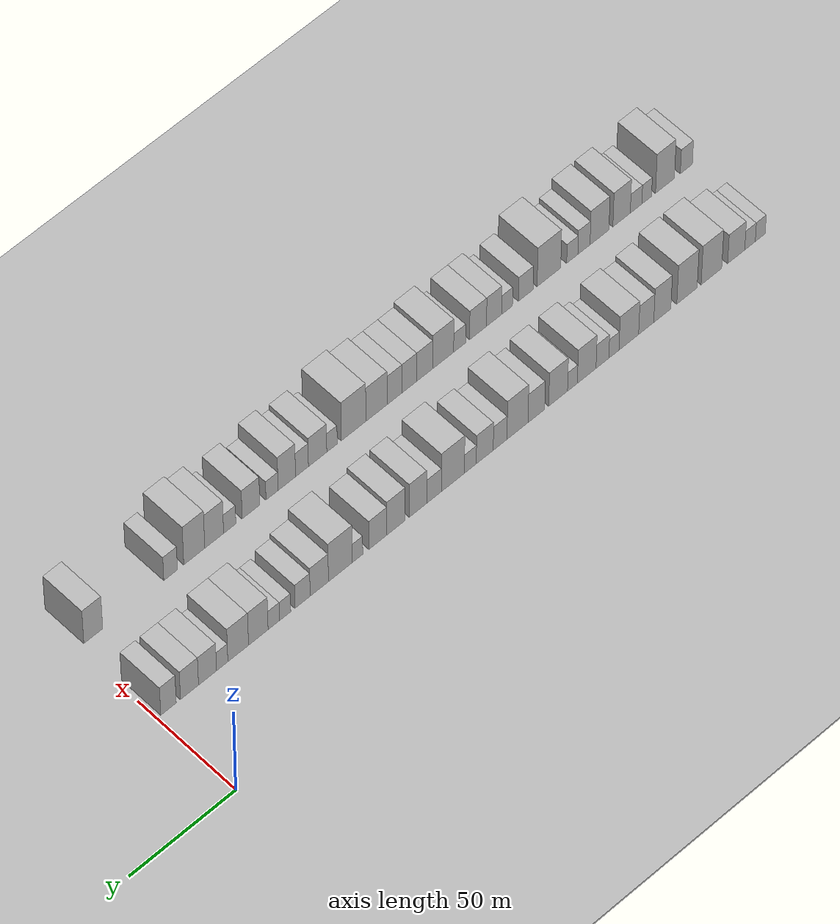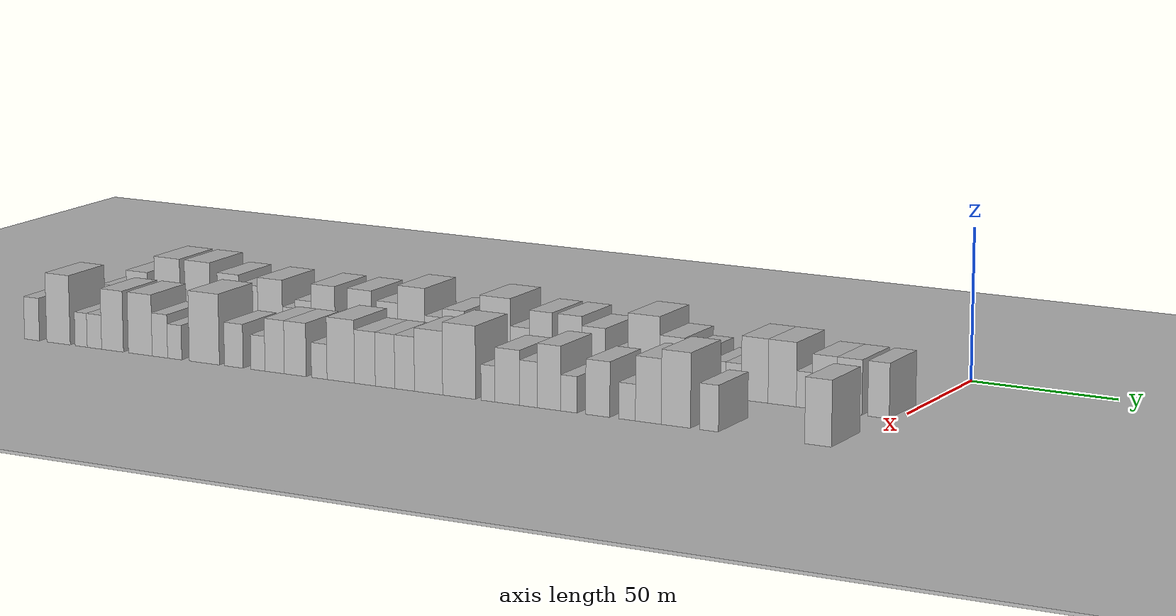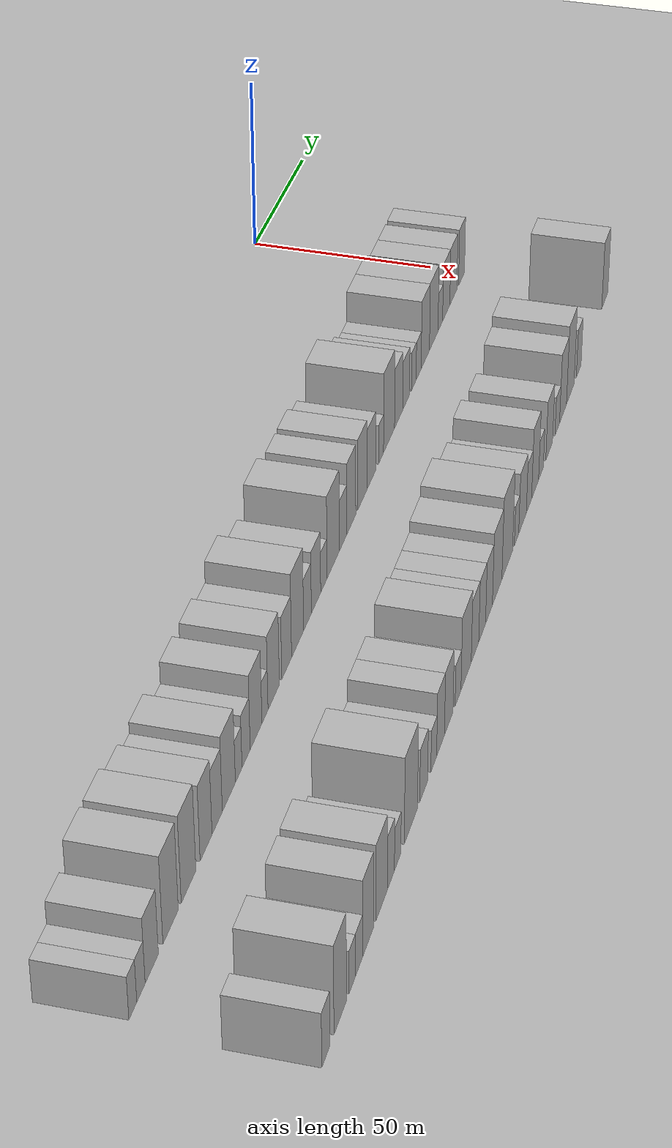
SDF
<sdf version="1.6">
 <world name="default">
  <include><name>ground_plane_1</name><uri>model://HANNAS_ground_plane</uri></include>
  <include>
   <name>ground_plane_2</name>
   <uri>model://HANNAS_ground_plane</uri>
   <pose>100 0 0  0 0 0</pose>
  </include>
  <model name="building_1">
   <static>1</static>
   <pose>50.0000 -294.4814 0 0.000000 0.000000 0.000000</pose>
   <link name="link">
    <pose>0 0 6.00 0 0 0</pose>
    <collision name="collision"><geometry><box><size>20.0000 5.0373 12.0000</size></box></geometry></collision>
    <visual name="visual">
     <cast_shadows>0</cast_shadows>
     <geometry><box><size>20.0000 5.0373 12.0000</size></box></geometry>
     <material>
      <script>
       <uri>model://HANNAS_wall/materials/scripts</uri>
       <uri>model://HANNAS_wall/materials/textures</uri>
       <name>vrc/HANNAS_wall</name>
      </script>
     </material>
    </visual>
   </link>
  </model>
  <model name="building_2">
   <static>1</static>
   <pose>50.0000 -289.2743 0 0.000000 0.000000 0.000000</pose>
   <link name="link">
    <pose>0 0 6.00 0 0 0</pose>
    <collision name="collision"><geometry><box><size>20.0000 5.3769 12.0000</size></box></geometry></collision>
    <visual name="visual">
     <cast_shadows>0</cast_shadows>
     <geometry><box><size>20.0000 5.3769 12.0000</size></box></geometry>
     <material>
      <script>
       <uri>model://HANNAS_wall/materials/scripts</uri>
       <uri>model://HANNAS_wall/materials/textures</uri>
       <name>vrc/HANNAS_wall</name>
      </script>
     </material>
    </visual>
   </link>
  </model>
  <model name="building_3">
   <static>1</static>
   <pose>50.0000 -282.2469 0 0.000000 0.000000 0.000000</pose>
   <link name="link">
    <pose>0 0 9.00 0 0 0</pose>
    <collision name="collision"><geometry><box><size>20.0000 8.6779 18.0000</size></box></geometry></collision>
    <visual name="visual">
     <cast_shadows>0</cast_shadows>
     <geometry><box><size>20.0000 8.6779 18.0000</size></box></geometry>
     <material>
      <script>
       <uri>model://HANNAS_wall/materials/scripts</uri>
       <uri>model://HANNAS_wall/materials/textures</uri>
       <name>vrc/HANNAS_wall</name>
      </script>
     </material>
    </visual>
   </link>
  </model>
  <model name="building_4">
   <static>1</static>
   <pose>50.0000 -269.6992 0 0.000000 0.000000 0.000000</pose>
   <link name="link">
    <pose>0 0 12.00 0 0 0</pose>
    <collision name="collision"><geometry><box><size>20.0000 10.4175 24.0000</size></box></geometry></collision>
    <visual name="visual">
     <cast_shadows>0</cast_shadows>
     <geometry><box><size>20.0000 10.4175 24.0000</size></box></geometry>
     <material>
      <script>
       <uri>model://HANNAS_wall/materials/scripts</uri>
       <uri>model://HANNAS_wall/materials/textures</uri>
       <name>vrc/HANNAS_wall</name>
      </script>
     </material>
    </visual>
   </link>
  </model>
  <model name="building_5">
   <static>1</static>
   <pose>50.0000 -257.3596 0 0.000000 0.000000 0.000000</pose>
   <link name="link">
    <pose>0 0 12.00 0 0 0</pose>
    <collision name="collision"><geometry><box><size>20.0000 10.2619 24.0000</size></box></geometry></collision>
    <visual name="visual">
     <cast_shadows>0</cast_shadows>
     <geometry><box><size>20.0000 10.2619 24.0000</size></box></geometry>
     <material>
      <script>
       <uri>model://HANNAS_wall/materials/scripts</uri>
       <uri>model://HANNAS_wall/materials/textures</uri>
       <name>vrc/HANNAS_wall</name>
      </script>
     </material>
    </visual>
   </link>
  </model>
  <model name="building_6">
   <static>1</static>
   <pose>50.0000 -244.9306 0 0.000000 0.000000 0.000000</pose>
   <link name="link">
    <pose>0 0 10.50 0 0 0</pose>
    <collision name="collision"><geometry><box><size>20.0000 8.5960 21.0000</size></box></geometry></collision>
    <visual name="visual">
     <cast_shadows>0</cast_shadows>
     <geometry><box><size>20.0000 8.5960 21.0000</size></box></geometry>
     <material>
      <script>
       <uri>model://HANNAS_wall/materials/scripts</uri>
       <uri>model://HANNAS_wall/materials/textures</uri>
       <name>vrc/HANNAS_wall</name>
      </script>
     </material>
    </visual>
   </link>
  </model>
  <model name="building_7">
   <static>1</static>
   <pose>50.0000 -236.8442 0 0.000000 0.000000 0.000000</pose>
   <link name="link">
    <pose>0 0 9.00 0 0 0</pose>
    <collision name="collision"><geometry><box><size>20.0000 7.5769 18.0000</size></box></geometry></collision>
    <visual name="visual">
     <cast_shadows>0</cast_shadows>
     <geometry><box><size>20.0000 7.5769 18.0000</size></box></geometry>
     <material>
      <script>
       <uri>model://HANNAS_wall/materials/scripts</uri>
       <uri>model://HANNAS_wall/materials/textures</uri>
       <name>vrc/HANNAS_wall</name>
      </script>
     </material>
    </visual>
   </link>
  </model>
  <model name="building_8">
   <static>1</static>
   <pose>50.0000 -228.1408 0 0.000000 0.000000 0.000000</pose>
   <link name="link">
    <pose>0 0 10.50 0 0 0</pose>
    <collision name="collision"><geometry><box><size>20.0000 9.8300 21.0000</size></box></geometry></collision>
    <visual name="visual">
     <cast_shadows>0</cast_shadows>
     <geometry><box><size>20.0000 9.8300 21.0000</size></box></geometry>
     <material>
      <script>
       <uri>model://HANNAS_wall/materials/scripts</uri>
       <uri>model://HANNAS_wall/materials/textures</uri>
       <name>vrc/HANNAS_wall</name>
      </script>
     </material>
    </visual>
   </link>
  </model>
  <model name="building_9">
   <static>1</static>
   <pose>50.0000 -220.6946 0 0.000000 0.000000 0.000000</pose>
   <link name="link">
    <pose>0 0 6.00 0 0 0</pose>
    <collision name="collision"><geometry><box><size>20.0000 5.0625 12.0000</size></box></geometry></collision>
    <visual name="visual">
     <cast_shadows>0</cast_shadows>
     <geometry><box><size>20.0000 5.0625 12.0000</size></box></geometry>
     <material>
      <script>
       <uri>model://HANNAS_wall/materials/scripts</uri>
       <uri>model://HANNAS_wall/materials/textures</uri>
       <name>vrc/HANNAS_wall</name>
      </script>
     </material>
    </visual>
   </link>
  </model>
  <model name="building_10">
   <static>1</static>
   <pose>50.0000 -214.9720 0 0.000000 0.000000 0.000000</pose>
   <link name="link">
    <pose>0 0 7.50 0 0 0</pose>
    <collision name="collision"><geometry><box><size>20.0000 6.3826 15.0000</size></box></geometry></collision>
    <visual name="visual">
     <cast_shadows>0</cast_shadows>
     <geometry><box><size>20.0000 6.3826 15.0000</size></box></geometry>
     <material>
      <script>
       <uri>model://HANNAS_wall/materials/scripts</uri>
       <uri>model://HANNAS_wall/materials/textures</uri>
       <name>vrc/HANNAS_wall</name>
      </script>
     </material>
    </visual>
   </link>
  </model>
  <model name="building_11">
   <static>1</static>
   <pose>50.0000 -207.1445 0 0.000000 0.000000 0.000000</pose>
   <link name="link">
    <pose>0 0 10.50 0 0 0</pose>
    <collision name="collision"><geometry><box><size>20.0000 9.2723 21.0000</size></box></geometry></collision>
    <visual name="visual">
     <cast_shadows>0</cast_shadows>
     <geometry><box><size>20.0000 9.2723 21.0000</size></box></geometry>
     <material>
      <script>
       <uri>model://HANNAS_wall/materials/scripts</uri>
       <uri>model://HANNAS_wall/materials/textures</uri>
       <name>vrc/HANNAS_wall</name>
      </script>
     </material>
    </visual>
   </link>
  </model>
  <model name="building_12">
   <static>1</static>
   <pose>50.0000 -200.0656 0 0.000000 0.000000 0.000000</pose>
   <link name="link">
    <pose>0 0 6.00 0 0 0</pose>
    <collision name="collision"><geometry><box><size>20.0000 4.8856 12.0000</size></box></geometry></collision>
    <visual name="visual">
     <cast_shadows>0</cast_shadows>
     <geometry><box><size>20.0000 4.8856 12.0000</size></box></geometry>
     <material>
      <script>
       <uri>model://HANNAS_wall/materials/scripts</uri>
       <uri>model://HANNAS_wall/materials/textures</uri>
       <name>vrc/HANNAS_wall</name>
      </script>
     </material>
    </visual>
   </link>
  </model>
  <model name="building_13">
   <static>1</static>
   <pose>50.0000 -192.9678 0 0.000000 0.000000 0.000000</pose>
   <link name="link">
    <pose>0 0 10.50 0 0 0</pose>
    <collision name="collision"><geometry><box><size>20.0000 9.3100 21.0000</size></box></geometry></collision>
    <visual name="visual">
     <cast_shadows>0</cast_shadows>
     <geometry><box><size>20.0000 9.3100 21.0000</size></box></geometry>
     <material>
      <script>
       <uri>model://HANNAS_wall/materials/scripts</uri>
       <uri>model://HANNAS_wall/materials/textures</uri>
       <name>vrc/HANNAS_wall</name>
      </script>
     </material>
    </visual>
   </link>
  </model>
  <model name="building_14">
   <static>1</static>
   <pose>50.0000 -182.2153 0 0.000000 0.000000 0.000000</pose>
   <link name="link">
    <pose>0 0 9.00 0 0 0</pose>
    <collision name="collision"><geometry><box><size>20.0000 8.1949 18.0000</size></box></geometry></collision>
    <visual name="visual">
     <cast_shadows>0</cast_shadows>
     <geometry><box><size>20.0000 8.1949 18.0000</size></box></geometry>
     <material>
      <script>
       <uri>model://HANNAS_wall/materials/scripts</uri>
       <uri>model://HANNAS_wall/materials/textures</uri>
       <name>vrc/HANNAS_wall</name>
      </script>
     </material>
    </visual>
   </link>
  </model>
  <model name="building_15">
   <static>1</static>
   <pose>50.0000 -172.9326 0 0.000000 0.000000 0.000000</pose>
   <link name="link">
    <pose>0 0 12.00 0 0 0</pose>
    <collision name="collision"><geometry><box><size>20.0000 10.3706 24.0000</size></box></geometry></collision>
    <visual name="visual">
     <cast_shadows>0</cast_shadows>
     <geometry><box><size>20.0000 10.3706 24.0000</size></box></geometry>
     <material>
      <script>
       <uri>model://HANNAS_wall/materials/scripts</uri>
       <uri>model://HANNAS_wall/materials/textures</uri>
       <name>vrc/HANNAS_wall</name>
      </script>
     </material>
    </visual>
   </link>
  </model>
  <model name="building_16">
   <static>1</static>
   <pose>50.0000 -164.3762 0 0.000000 0.000000 0.000000</pose>
   <link name="link">
    <pose>0 0 7.50 0 0 0</pose>
    <collision name="collision"><geometry><box><size>20.0000 6.7421 15.0000</size></box></geometry></collision>
    <visual name="visual">
     <cast_shadows>0</cast_shadows>
     <geometry><box><size>20.0000 6.7421 15.0000</size></box></geometry>
     <material>
      <script>
       <uri>model://HANNAS_wall/materials/scripts</uri>
       <uri>model://HANNAS_wall/materials/textures</uri>
       <name>vrc/HANNAS_wall</name>
      </script>
     </material>
    </visual>
   </link>
  </model>
  <model name="building_17">
   <static>1</static>
   <pose>50.0000 -156.8604 0 0.000000 0.000000 0.000000</pose>
   <link name="link">
    <pose>0 0 9.00 0 0 0</pose>
    <collision name="collision"><geometry><box><size>20.0000 8.2895 18.0000</size></box></geometry></collision>
    <visual name="visual">
     <cast_shadows>0</cast_shadows>
     <geometry><box><size>20.0000 8.2895 18.0000</size></box></geometry>
     <material>
      <script>
       <uri>model://HANNAS_wall/materials/scripts</uri>
       <uri>model://HANNAS_wall/materials/textures</uri>
       <name>vrc/HANNAS_wall</name>
      </script>
     </material>
    </visual>
   </link>
  </model>
  <model name="building_18">
   <static>1</static>
   <pose>50.0000 -149.8223 0 0.000000 0.000000 0.000000</pose>
   <link name="link">
    <pose>0 0 6.00 0 0 0</pose>
    <collision name="collision"><geometry><box><size>20.0000 5.7867 12.0000</size></box></geometry></collision>
    <visual name="visual">
     <cast_shadows>0</cast_shadows>
     <geometry><box><size>20.0000 5.7867 12.0000</size></box></geometry>
     <material>
      <script>
       <uri>model://HANNAS_wall/materials/scripts</uri>
       <uri>model://HANNAS_wall/materials/textures</uri>
       <name>vrc/HANNAS_wall</name>
      </script>
     </material>
    </visual>
   </link>
  </model>
  <model name="building_19">
   <static>1</static>
   <pose>50.0000 -141.2741 0 0.000000 0.000000 0.000000</pose>
   <link name="link">
    <pose>0 0 12.00 0 0 0</pose>
    <collision name="collision"><geometry><box><size>20.0000 11.3098 24.0000</size></box></geometry></collision>
    <visual name="visual">
     <cast_shadows>0</cast_shadows>
     <geometry><box><size>20.0000 11.3098 24.0000</size></box></geometry>
     <material>
      <script>
       <uri>model://HANNAS_wall/materials/scripts</uri>
       <uri>model://HANNAS_wall/materials/textures</uri>
       <name>vrc/HANNAS_wall</name>
      </script>
     </material>
    </visual>
   </link>
  </model>
  <model name="building_20">
   <static>1</static>
   <pose>50.0000 -132.0643 0 0.000000 0.000000 0.000000</pose>
   <link name="link">
    <pose>0 0 7.50 0 0 0</pose>
    <collision name="collision"><geometry><box><size>20.0000 7.1097 15.0000</size></box></geometry></collision>
    <visual name="visual">
     <cast_shadows>0</cast_shadows>
     <geometry><box><size>20.0000 7.1097 15.0000</size></box></geometry>
     <material>
      <script>
       <uri>model://HANNAS_wall/materials/scripts</uri>
       <uri>model://HANNAS_wall/materials/textures</uri>
       <name>vrc/HANNAS_wall</name>
      </script>
     </material>
    </visual>
   </link>
  </model>
  <model name="building_21">
   <static>1</static>
   <pose>50.0000 -124.2901 0 0.000000 0.000000 0.000000</pose>
   <link name="link">
    <pose>0 0 10.50 0 0 0</pose>
    <collision name="collision"><geometry><box><size>20.0000 8.4387 21.0000</size></box></geometry></collision>
    <visual name="visual">
     <cast_shadows>0</cast_shadows>
     <geometry><box><size>20.0000 8.4387 21.0000</size></box></geometry>
     <material>
      <script>
       <uri>model://HANNAS_wall/materials/scripts</uri>
       <uri>model://HANNAS_wall/materials/textures</uri>
       <name>vrc/HANNAS_wall</name>
      </script>
     </material>
    </visual>
   </link>
  </model>
  <model name="building_22">
   <static>1</static>
   <pose>50.0000 -113.6414 0 0.000000 0.000000 0.000000</pose>
   <link name="link">
    <pose>0 0 10.50 0 0 0</pose>
    <collision name="collision"><geometry><box><size>20.0000 8.8589 21.0000</size></box></geometry></collision>
    <visual name="visual">
     <cast_shadows>0</cast_shadows>
     <geometry><box><size>20.0000 8.8589 21.0000</size></box></geometry>
     <material>
      <script>
       <uri>model://HANNAS_wall/materials/scripts</uri>
       <uri>model://HANNAS_wall/materials/textures</uri>
       <name>vrc/HANNAS_wall</name>
      </script>
     </material>
    </visual>
   </link>
  </model>
  <model name="building_23">
   <static>1</static>
   <pose>50.0000 -104.8949 0 0.000000 0.000000 0.000000</pose>
   <link name="link">
    <pose>0 0 9.00 0 0 0</pose>
    <collision name="collision"><geometry><box><size>20.0000 8.6341 18.0000</size></box></geometry></collision>
    <visual name="visual">
     <cast_shadows>0</cast_shadows>
     <geometry><box><size>20.0000 8.6341 18.0000</size></box></geometry>
     <material>
      <script>
       <uri>model://HANNAS_wall/materials/scripts</uri>
       <uri>model://HANNAS_wall/materials/textures</uri>
       <name>vrc/HANNAS_wall</name>
      </script>
     </material>
    </visual>
   </link>
  </model>
  <model name="building_24">
   <static>1</static>
   <pose>50.0000 -95.0213 0 0.000000 0.000000 0.000000</pose>
   <link name="link">
    <pose>0 0 6.00 0 0 0</pose>
    <collision name="collision"><geometry><box><size>20.0000 5.1131 12.0000</size></box></geometry></collision>
    <visual name="visual">
     <cast_shadows>0</cast_shadows>
     <geometry><box><size>20.0000 5.1131 12.0000</size></box></geometry>
     <material>
      <script>
       <uri>model://HANNAS_wall/materials/scripts</uri>
       <uri>model://HANNAS_wall/materials/textures</uri>
       <name>vrc/HANNAS_wall</name>
      </script>
     </material>
    </visual>
   </link>
  </model>
  <model name="building_25">
   <static>1</static>
   <pose>50.0000 -86.7722 0 0.000000 0.000000 0.000000</pose>
   <link name="link">
    <pose>0 0 12.00 0 0 0</pose>
    <collision name="collision"><geometry><box><size>20.0000 11.3852 24.0000</size></box></geometry></collision>
    <visual name="visual">
     <cast_shadows>0</cast_shadows>
     <geometry><box><size>20.0000 11.3852 24.0000</size></box></geometry>
     <material>
      <script>
       <uri>model://HANNAS_wall/materials/scripts</uri>
       <uri>model://HANNAS_wall/materials/textures</uri>
       <name>vrc/HANNAS_wall</name>
      </script>
     </material>
    </visual>
   </link>
  </model>
  <model name="building_26">
   <static>1</static>
   <pose>50.0000 -76.6967 0 0.000000 0.000000 0.000000</pose>
   <link name="link">
    <pose>0 0 9.00 0 0 0</pose>
    <collision name="collision"><geometry><box><size>20.0000 8.7659 18.0000</size></box></geometry></collision>
    <visual name="visual">
     <cast_shadows>0</cast_shadows>
     <geometry><box><size>20.0000 8.7659 18.0000</size></box></geometry>
     <material>
      <script>
       <uri>model://HANNAS_wall/materials/scripts</uri>
       <uri>model://HANNAS_wall/materials/textures</uri>
       <name>vrc/HANNAS_wall</name>
      </script>
     </material>
    </visual>
   </link>
  </model>
  <model name="building_27">
   <static>1</static>
   <pose>50.0000 -68.6961 0 0.000000 0.000000 0.000000</pose>
   <link name="link">
    <pose>0 0 7.50 0 0 0</pose>
    <collision name="collision"><geometry><box><size>20.0000 7.2352 15.0000</size></box></geometry></collision>
    <visual name="visual">
     <cast_shadows>0</cast_shadows>
     <geometry><box><size>20.0000 7.2352 15.0000</size></box></geometry>
     <material>
      <script>
       <uri>model://HANNAS_wall/materials/scripts</uri>
       <uri>model://HANNAS_wall/materials/textures</uri>
       <name>vrc/HANNAS_wall</name>
      </script>
     </material>
    </visual>
   </link>
  </model>
  <model name="building_28">
   <static>1</static>
   <pose>50.0000 -60.4429 0 0.000000 0.000000 0.000000</pose>
   <link name="link">
    <pose>0 0 6.00 0 0 0</pose>
    <collision name="collision"><geometry><box><size>20.0000 5.2712 12.0000</size></box></geometry></collision>
    <visual name="visual">
     <cast_shadows>0</cast_shadows>
     <geometry><box><size>20.0000 5.2712 12.0000</size></box></geometry>
     <material>
      <script>
       <uri>model://HANNAS_wall/materials/scripts</uri>
       <uri>model://HANNAS_wall/materials/textures</uri>
       <name>vrc/HANNAS_wall</name>
      </script>
     </material>
    </visual>
   </link>
  </model>
  <model name="building_29">
   <static>1</static>
   <pose>50.0000 -55.0356 0 0.000000 0.000000 0.000000</pose>
   <link name="link">
    <pose>0 0 6.00 0 0 0</pose>
    <collision name="collision"><geometry><box><size>20.0000 5.5434 12.0000</size></box></geometry></collision>
    <visual name="visual">
     <cast_shadows>0</cast_shadows>
     <geometry><box><size>20.0000 5.5434 12.0000</size></box></geometry>
     <material>
      <script>
       <uri>model://HANNAS_wall/materials/scripts</uri>
       <uri>model://HANNAS_wall/materials/textures</uri>
       <name>vrc/HANNAS_wall</name>
      </script>
     </material>
    </visual>
   </link>
  </model>
  <model name="building_30">
   <static>1</static>
   <pose>50.0000 -47.6244 0 0.000000 0.000000 0.000000</pose>
   <link name="link">
    <pose>0 0 10.50 0 0 0</pose>
    <collision name="collision"><geometry><box><size>20.0000 9.2790 21.0000</size></box></geometry></collision>
    <visual name="visual">
     <cast_shadows>0</cast_shadows>
     <geometry><box><size>20.0000 9.2790 21.0000</size></box></geometry>
     <material>
      <script>
       <uri>model://HANNAS_wall/materials/scripts</uri>
       <uri>model://HANNAS_wall/materials/textures</uri>
       <name>vrc/HANNAS_wall</name>
      </script>
     </material>
    </visual>
   </link>
  </model>
  <model name="building_31">
   <static>1</static>
   <pose>50.0000 -38.0883 0 0.000000 0.000000 0.000000</pose>
   <link name="link">
    <pose>0 0 10.50 0 0 0</pose>
    <collision name="collision"><geometry><box><size>20.0000 9.7932 21.0000</size></box></geometry></collision>
    <visual name="visual">
     <cast_shadows>0</cast_shadows>
     <geometry><box><size>20.0000 9.7932 21.0000</size></box></geometry>
     <material>
      <script>
       <uri>model://HANNAS_wall/materials/scripts</uri>
       <uri>model://HANNAS_wall/materials/textures</uri>
       <name>vrc/HANNAS_wall</name>
      </script>
     </material>
    </visual>
   </link>
  </model>
  <model name="building_32">
   <static>1</static>
   <pose>50.0000 -30.5219 0 0.000000 0.000000 0.000000</pose>
   <link name="link">
    <pose>0 0 6.00 0 0 0</pose>
    <collision name="collision"><geometry><box><size>20.0000 5.3396 12.0000</size></box></geometry></collision>
    <visual name="visual">
     <cast_shadows>0</cast_shadows>
     <geometry><box><size>20.0000 5.3396 12.0000</size></box></geometry>
     <material>
      <script>
       <uri>model://HANNAS_wall/materials/scripts</uri>
       <uri>model://HANNAS_wall/materials/textures</uri>
       <name>vrc/HANNAS_wall</name>
      </script>
     </material>
    </visual>
   </link>
  </model>
  <model name="building_33">
   <static>1</static>
   <pose>50.0000 -23.6054 0 0.000000 0.000000 0.000000</pose>
   <link name="link">
    <pose>0 0 9.00 0 0 0</pose>
    <collision name="collision"><geometry><box><size>20.0000 8.4933 18.0000</size></box></geometry></collision>
    <visual name="visual">
     <cast_shadows>0</cast_shadows>
     <geometry><box><size>20.0000 8.4933 18.0000</size></box></geometry>
     <material>
      <script>
       <uri>model://HANNAS_wall/materials/scripts</uri>
       <uri>model://HANNAS_wall/materials/textures</uri>
       <name>vrc/HANNAS_wall</name>
      </script>
     </material>
    </visual>
   </link>
  </model>
  <model name="building_34">
   <static>1</static>
   <pose>50.0000 -15.1168 0 0.000000 0.000000 0.000000</pose>
   <link name="link">
    <pose>0 0 9.00 0 0 0</pose>
    <collision name="collision"><geometry><box><size>20.0000 8.4840 18.0000</size></box></geometry></collision>
    <visual name="visual">
     <cast_shadows>0</cast_shadows>
     <geometry><box><size>20.0000 8.4840 18.0000</size></box></geometry>
     <material>
      <script>
       <uri>model://HANNAS_wall/materials/scripts</uri>
       <uri>model://HANNAS_wall/materials/textures</uri>
       <name>vrc/HANNAS_wall</name>
      </script>
     </material>
    </visual>
   </link>
  </model>
  <model name="building_35">
   <static>1</static>
   <pose>50.0000 -5.2553 0 0.000000 0.000000 0.000000</pose>
   <link name="link">
    <pose>0 0 9.00 0 0 0</pose>
    <collision name="collision"><geometry><box><size>20.0000 7.2390 18.0000</size></box></geometry></collision>
    <visual name="visual">
     <cast_shadows>0</cast_shadows>
     <geometry><box><size>20.0000 7.2390 18.0000</size></box></geometry>
     <material>
      <script>
       <uri>model://HANNAS_wall/materials/scripts</uri>
       <uri>model://HANNAS_wall/materials/textures</uri>
       <name>vrc/HANNAS_wall</name>
      </script>
     </material>
    </visual>
   </link>
  </model>
  <model name="building_68">
   <static>1</static>
   <pose>90.0000 -296.9285 0 0.000000 0.000000 0.000000</pose>
   <link name="link">
    <pose>0 0 7.50 0 0 0</pose>
    <collision name="collision"><geometry><box><size>20.0000 6.1430 15.0000</size></box></geometry></collision>
    <visual name="visual">
     <cast_shadows>0</cast_shadows>
     <geometry><box><size>20.0000 6.1430 15.0000</size></box></geometry>
     <material>
      <script>
       <uri>model://HANNAS_wall/materials/scripts</uri>
       <uri>model://HANNAS_wall/materials/textures</uri>
       <name>vrc/HANNAS_wall</name>
      </script>
     </material>
    </visual>
   </link>
  </model>
  <model name="building_69">
   <static>1</static>
   <pose>90.0000 -286.0475 0 0.000000 0.000000 0.000000</pose>
   <link name="link">
    <pose>0 0 12.00 0 0 0</pose>
    <collision name="collision"><geometry><box><size>20.0000 9.6191 24.0000</size></box></geometry></collision>
    <visual name="visual">
     <cast_shadows>0</cast_shadows>
     <geometry><box><size>20.0000 9.6191 24.0000</size></box></geometry>
     <material>
      <script>
       <uri>model://HANNAS_wall/materials/scripts</uri>
       <uri>model://HANNAS_wall/materials/textures</uri>
       <name>vrc/HANNAS_wall</name>
      </script>
     </material>
    </visual>
   </link>
  </model>
  <model name="building_70">
   <static>1</static>
   <pose>90.0000 -276.7763 0 0.000000 0.000000 0.000000</pose>
   <link name="link">
    <pose>0 0 6.00 0 0 0</pose>
    <collision name="collision"><geometry><box><size>20.0000 4.9232 12.0000</size></box></geometry></collision>
    <visual name="visual">
     <cast_shadows>0</cast_shadows>
     <geometry><box><size>20.0000 4.9232 12.0000</size></box></geometry>
     <material>
      <script>
       <uri>model://HANNAS_wall/materials/scripts</uri>
       <uri>model://HANNAS_wall/materials/textures</uri>
       <name>vrc/HANNAS_wall</name>
      </script>
     </material>
    </visual>
   </link>
  </model>
  <model name="building_71">
   <static>1</static>
   <pose>90.0000 -271.3914 0 0.000000 0.000000 0.000000</pose>
   <link name="link">
    <pose>0 0 6.00 0 0 0</pose>
    <collision name="collision"><geometry><box><size>20.0000 5.8466 12.0000</size></box></geometry></collision>
    <visual name="visual">
     <cast_shadows>0</cast_shadows>
     <geometry><box><size>20.0000 5.8466 12.0000</size></box></geometry>
     <material>
      <script>
       <uri>model://HANNAS_wall/materials/scripts</uri>
       <uri>model://HANNAS_wall/materials/textures</uri>
       <name>vrc/HANNAS_wall</name>
      </script>
     </material>
    </visual>
   </link>
  </model>
  <model name="building_72">
   <static>1</static>
   <pose>90.0000 -264.0654 0 0.000000 0.000000 0.000000</pose>
   <link name="link">
    <pose>0 0 10.50 0 0 0</pose>
    <collision name="collision"><geometry><box><size>20.0000 8.8055 21.0000</size></box></geometry></collision>
    <visual name="visual">
     <cast_shadows>0</cast_shadows>
     <geometry><box><size>20.0000 8.8055 21.0000</size></box></geometry>
     <material>
      <script>
       <uri>model://HANNAS_wall/materials/scripts</uri>
       <uri>model://HANNAS_wall/materials/textures</uri>
       <name>vrc/HANNAS_wall</name>
      </script>
     </material>
    </visual>
   </link>
  </model>
  <model name="building_73">
   <static>1</static>
   <pose>90.0000 -252.9008 0 0.000000 0.000000 0.000000</pose>
   <link name="link">
    <pose>0 0 10.50 0 0 0</pose>
    <collision name="collision"><geometry><box><size>20.0000 9.5235 21.0000</size></box></geometry></collision>
    <visual name="visual">
     <cast_shadows>0</cast_shadows>
     <geometry><box><size>20.0000 9.5235 21.0000</size></box></geometry>
     <material>
      <script>
       <uri>model://HANNAS_wall/materials/scripts</uri>
       <uri>model://HANNAS_wall/materials/textures</uri>
       <name>vrc/HANNAS_wall</name>
      </script>
     </material>
    </visual>
   </link>
  </model>
  <model name="building_74">
   <static>1</static>
   <pose>90.0000 -245.0820 0 0.000000 0.000000 0.000000</pose>
   <link name="link">
    <pose>0 0 7.50 0 0 0</pose>
    <collision name="collision"><geometry><box><size>20.0000 6.1141 15.0000</size></box></geometry></collision>
    <visual name="visual">
     <cast_shadows>0</cast_shadows>
     <geometry><box><size>20.0000 6.1141 15.0000</size></box></geometry>
     <material>
      <script>
       <uri>model://HANNAS_wall/materials/scripts</uri>
       <uri>model://HANNAS_wall/materials/textures</uri>
       <name>vrc/HANNAS_wall</name>
      </script>
     </material>
    </visual>
   </link>
  </model>
  <model name="building_75">
   <static>1</static>
   <pose>90.0000 -239.2229 0 0.000000 0.000000 0.000000</pose>
   <link name="link">
    <pose>0 0 6.00 0 0 0</pose>
    <collision name="collision"><geometry><box><size>20.0000 5.6043 12.0000</size></box></geometry></collision>
    <visual name="visual">
     <cast_shadows>0</cast_shadows>
     <geometry><box><size>20.0000 5.6043 12.0000</size></box></geometry>
     <material>
      <script>
       <uri>model://HANNAS_wall/materials/scripts</uri>
       <uri>model://HANNAS_wall/materials/textures</uri>
       <name>vrc/HANNAS_wall</name>
      </script>
     </material>
    </visual>
   </link>
  </model>
  <model name="building_76">
   <static>1</static>
   <pose>90.0000 -227.5243 0 0.000000 0.000000 0.000000</pose>
   <link name="link">
    <pose>0 0 12.00 0 0 0</pose>
    <collision name="collision"><geometry><box><size>20.0000 11.7929 24.0000</size></box></geometry></collision>
    <visual name="visual">
     <cast_shadows>0</cast_shadows>
     <geometry><box><size>20.0000 11.7929 24.0000</size></box></geometry>
     <material>
      <script>
       <uri>model://HANNAS_wall/materials/scripts</uri>
       <uri>model://HANNAS_wall/materials/textures</uri>
       <name>vrc/HANNAS_wall</name>
      </script>
     </material>
    </visual>
   </link>
  </model>
  <model name="building_77">
   <static>1</static>
   <pose>90.0000 -215.9899 0 0.000000 0.000000 0.000000</pose>
   <link name="link">
    <pose>0 0 7.50 0 0 0</pose>
    <collision name="collision"><geometry><box><size>20.0000 7.2759 15.0000</size></box></geometry></collision>
    <visual name="visual">
     <cast_shadows>0</cast_shadows>
     <geometry><box><size>20.0000 7.2759 15.0000</size></box></geometry>
     <material>
      <script>
       <uri>model://HANNAS_wall/materials/scripts</uri>
       <uri>model://HANNAS_wall/materials/textures</uri>
       <name>vrc/HANNAS_wall</name>
      </script>
     </material>
    </visual>
   </link>
  </model>
  <model name="building_78">
   <static>1</static>
   <pose>90.0000 -206.6323 0 0.000000 0.000000 0.000000</pose>
   <link name="link">
    <pose>0 0 6.00 0 0 0</pose>
    <collision name="collision"><geometry><box><size>20.0000 5.4393 12.0000</size></box></geometry></collision>
    <visual name="visual">
     <cast_shadows>0</cast_shadows>
     <geometry><box><size>20.0000 5.4393 12.0000</size></box></geometry>
     <material>
      <script>
       <uri>model://HANNAS_wall/materials/scripts</uri>
       <uri>model://HANNAS_wall/materials/textures</uri>
       <name>vrc/HANNAS_wall</name>
      </script>
     </material>
    </visual>
   </link>
  </model>
  <model name="building_79">
   <static>1</static>
   <pose>90.0000 -200.1894 0 0.000000 0.000000 0.000000</pose>
   <link name="link">
    <pose>0 0 9.00 0 0 0</pose>
    <collision name="collision"><geometry><box><size>20.0000 7.4466 18.0000</size></box></geometry></collision>
    <visual name="visual">
     <cast_shadows>0</cast_shadows>
     <geometry><box><size>20.0000 7.4466 18.0000</size></box></geometry>
     <material>
      <script>
       <uri>model://HANNAS_wall/materials/scripts</uri>
       <uri>model://HANNAS_wall/materials/textures</uri>
       <name>vrc/HANNAS_wall</name>
      </script>
     </material>
    </visual>
   </link>
  </model>
  <model name="building_80">
   <static>1</static>
   <pose>90.0000 -192.2884 0 0.000000 0.000000 0.000000</pose>
   <link name="link">
    <pose>0 0 9.00 0 0 0</pose>
    <collision name="collision"><geometry><box><size>20.0000 8.3553 18.0000</size></box></geometry></collision>
    <visual name="visual">
     <cast_shadows>0</cast_shadows>
     <geometry><box><size>20.0000 8.3553 18.0000</size></box></geometry>
     <material>
      <script>
       <uri>model://HANNAS_wall/materials/scripts</uri>
       <uri>model://HANNAS_wall/materials/textures</uri>
       <name>vrc/HANNAS_wall</name>
      </script>
     </material>
    </visual>
   </link>
  </model>
  <model name="building_81">
   <static>1</static>
   <pose>90.0000 -183.1633 0 0.000000 0.000000 0.000000</pose>
   <link name="link">
    <pose>0 0 6.00 0 0 0</pose>
    <collision name="collision"><geometry><box><size>20.0000 5.8948 12.0000</size></box></geometry></collision>
    <visual name="visual">
     <cast_shadows>0</cast_shadows>
     <geometry><box><size>20.0000 5.8948 12.0000</size></box></geometry>
     <material>
      <script>
       <uri>model://HANNAS_wall/materials/scripts</uri>
       <uri>model://HANNAS_wall/materials/textures</uri>
       <name>vrc/HANNAS_wall</name>
      </script>
     </material>
    </visual>
   </link>
  </model>
  <model name="building_82">
   <static>1</static>
   <pose>90.0000 -175.0338 0 0.000000 0.000000 0.000000</pose>
   <link name="link">
    <pose>0 0 10.50 0 0 0</pose>
    <collision name="collision"><geometry><box><size>20.0000 10.3643 21.0000</size></box></geometry></collision>
    <visual name="visual">
     <cast_shadows>0</cast_shadows>
     <geometry><box><size>20.0000 10.3643 21.0000</size></box></geometry>
     <material>
      <script>
       <uri>model://HANNAS_wall/materials/scripts</uri>
       <uri>model://HANNAS_wall/materials/textures</uri>
       <name>vrc/HANNAS_wall</name>
      </script>
     </material>
    </visual>
   </link>
  </model>
  <model name="building_83">
   <static>1</static>
   <pose>90.0000 -165.9601 0 0.000000 0.000000 0.000000</pose>
   <link name="link">
    <pose>0 0 9.00 0 0 0</pose>
    <collision name="collision"><geometry><box><size>20.0000 7.7831 18.0000</size></box></geometry></collision>
    <visual name="visual">
     <cast_shadows>0</cast_shadows>
     <geometry><box><size>20.0000 7.7831 18.0000</size></box></geometry>
     <material>
      <script>
       <uri>model://HANNAS_wall/materials/scripts</uri>
       <uri>model://HANNAS_wall/materials/textures</uri>
       <name>vrc/HANNAS_wall</name>
      </script>
     </material>
    </visual>
   </link>
  </model>
  <model name="building_84">
   <static>1</static>
   <pose>90.0000 -158.4560 0 0.000000 0.000000 0.000000</pose>
   <link name="link">
    <pose>0 0 9.00 0 0 0</pose>
    <collision name="collision"><geometry><box><size>20.0000 7.2252 18.0000</size></box></geometry></collision>
    <visual name="visual">
     <cast_shadows>0</cast_shadows>
     <geometry><box><size>20.0000 7.2252 18.0000</size></box></geometry>
     <material>
      <script>
       <uri>model://HANNAS_wall/materials/scripts</uri>
       <uri>model://HANNAS_wall/materials/textures</uri>
       <name>vrc/HANNAS_wall</name>
      </script>
     </material>
    </visual>
   </link>
  </model>
  <model name="building_85">
   <static>1</static>
   <pose>90.0000 -151.1923 0 0.000000 0.000000 0.000000</pose>
   <link name="link">
    <pose>0 0 9.00 0 0 0</pose>
    <collision name="collision"><geometry><box><size>20.0000 7.3021 18.0000</size></box></geometry></collision>
    <visual name="visual">
     <cast_shadows>0</cast_shadows>
     <geometry><box><size>20.0000 7.3021 18.0000</size></box></geometry>
     <material>
      <script>
       <uri>model://HANNAS_wall/materials/scripts</uri>
       <uri>model://HANNAS_wall/materials/textures</uri>
       <name>vrc/HANNAS_wall</name>
      </script>
     </material>
    </visual>
   </link>
  </model>
  <model name="building_86">
   <static>1</static>
   <pose>90.0000 -142.3525 0 0.000000 0.000000 0.000000</pose>
   <link name="link">
    <pose>0 0 10.50 0 0 0</pose>
    <collision name="collision"><geometry><box><size>20.0000 10.3775 21.0000</size></box></geometry></collision>
    <visual name="visual">
     <cast_shadows>0</cast_shadows>
     <geometry><box><size>20.0000 10.3775 21.0000</size></box></geometry>
     <material>
      <script>
       <uri>model://HANNAS_wall/materials/scripts</uri>
       <uri>model://HANNAS_wall/materials/textures</uri>
       <name>vrc/HANNAS_wall</name>
      </script>
     </material>
    </visual>
   </link>
  </model>
  <model name="building_87">
   <static>1</static>
   <pose>90.0000 -131.1792 0 0.000000 0.000000 0.000000</pose>
   <link name="link">
    <pose>0 0 12.00 0 0 0</pose>
    <collision name="collision"><geometry><box><size>20.0000 11.9691 24.0000</size></box></geometry></collision>
    <visual name="visual">
     <cast_shadows>0</cast_shadows>
     <geometry><box><size>20.0000 11.9691 24.0000</size></box></geometry>
     <material>
      <script>
       <uri>model://HANNAS_wall/materials/scripts</uri>
       <uri>model://HANNAS_wall/materials/textures</uri>
       <name>vrc/HANNAS_wall</name>
      </script>
     </material>
    </visual>
   </link>
  </model>
  <model name="building_88">
   <static>1</static>
   <pose>90.0000 -120.6740 0 0.000000 0.000000 0.000000</pose>
   <link name="link">
    <pose>0 0 6.00 0 0 0</pose>
    <collision name="collision"><geometry><box><size>20.0000 5.0412 12.0000</size></box></geometry></collision>
    <visual name="visual">
     <cast_shadows>0</cast_shadows>
     <geometry><box><size>20.0000 5.0412 12.0000</size></box></geometry>
     <material>
      <script>
       <uri>model://HANNAS_wall/materials/scripts</uri>
       <uri>model://HANNAS_wall/materials/textures</uri>
       <name>vrc/HANNAS_wall</name>
      </script>
     </material>
    </visual>
   </link>
  </model>
  <model name="building_89">
   <static>1</static>
   <pose>90.0000 -113.7083 0 0.000000 0.000000 0.000000</pose>
   <link name="link">
    <pose>0 0 9.00 0 0 0</pose>
    <collision name="collision"><geometry><box><size>20.0000 8.8901 18.0000</size></box></geometry></collision>
    <visual name="visual">
     <cast_shadows>0</cast_shadows>
     <geometry><box><size>20.0000 8.8901 18.0000</size></box></geometry>
     <material>
      <script>
       <uri>model://HANNAS_wall/materials/scripts</uri>
       <uri>model://HANNAS_wall/materials/textures</uri>
       <name>vrc/HANNAS_wall</name>
      </script>
     </material>
    </visual>
   </link>
  </model>
  <model name="building_90">
   <static>1</static>
   <pose>90.0000 -106.1480 0 0.000000 0.000000 0.000000</pose>
   <link name="link">
    <pose>0 0 7.50 0 0 0</pose>
    <collision name="collision"><geometry><box><size>20.0000 6.2306 15.0000</size></box></geometry></collision>
    <visual name="visual">
     <cast_shadows>0</cast_shadows>
     <geometry><box><size>20.0000 6.2306 15.0000</size></box></geometry>
     <material>
      <script>
       <uri>model://HANNAS_wall/materials/scripts</uri>
       <uri>model://HANNAS_wall/materials/textures</uri>
       <name>vrc/HANNAS_wall</name>
      </script>
     </material>
    </visual>
   </link>
  </model>
  <model name="building_91">
   <static>1</static>
   <pose>90.0000 -98.8235 0 0.000000 0.000000 0.000000</pose>
   <link name="link">
    <pose>0 0 10.50 0 0 0</pose>
    <collision name="collision"><geometry><box><size>20.0000 8.4184 21.0000</size></box></geometry></collision>
    <visual name="visual">
     <cast_shadows>0</cast_shadows>
     <geometry><box><size>20.0000 8.4184 21.0000</size></box></geometry>
     <material>
      <script>
       <uri>model://HANNAS_wall/materials/scripts</uri>
       <uri>model://HANNAS_wall/materials/textures</uri>
       <name>vrc/HANNAS_wall</name>
      </script>
     </material>
    </visual>
   </link>
  </model>
  <model name="building_92">
   <static>1</static>
   <pose>90.0000 -91.7068 0 0.000000 0.000000 0.000000</pose>
   <link name="link">
    <pose>0 0 6.00 0 0 0</pose>
    <collision name="collision"><geometry><box><size>20.0000 5.8151 12.0000</size></box></geometry></collision>
    <visual name="visual">
     <cast_shadows>0</cast_shadows>
     <geometry><box><size>20.0000 5.8151 12.0000</size></box></geometry>
     <material>
      <script>
       <uri>model://HANNAS_wall/materials/scripts</uri>
       <uri>model://HANNAS_wall/materials/textures</uri>
       <name>vrc/HANNAS_wall</name>
      </script>
     </material>
    </visual>
   </link>
  </model>
  <model name="building_93">
   <static>1</static>
   <pose>90.0000 -81.5793 0 0.000000 0.000000 0.000000</pose>
   <link name="link">
    <pose>0 0 9.00 0 0 0</pose>
    <collision name="collision"><geometry><box><size>20.0000 8.4400 18.0000</size></box></geometry></collision>
    <visual name="visual">
     <cast_shadows>0</cast_shadows>
     <geometry><box><size>20.0000 8.4400 18.0000</size></box></geometry>
     <material>
      <script>
       <uri>model://HANNAS_wall/materials/scripts</uri>
       <uri>model://HANNAS_wall/materials/textures</uri>
       <name>vrc/HANNAS_wall</name>
      </script>
     </material>
    </visual>
   </link>
  </model>
  <model name="building_94">
   <static>1</static>
   <pose>90.0000 -71.4182 0 0.000000 0.000000 0.000000</pose>
   <link name="link">
    <pose>0 0 6.00 0 0 0</pose>
    <collision name="collision"><geometry><box><size>20.0000 5.8821 12.0000</size></box></geometry></collision>
    <visual name="visual">
     <cast_shadows>0</cast_shadows>
     <geometry><box><size>20.0000 5.8821 12.0000</size></box></geometry>
     <material>
      <script>
       <uri>model://HANNAS_wall/materials/scripts</uri>
       <uri>model://HANNAS_wall/materials/textures</uri>
       <name>vrc/HANNAS_wall</name>
      </script>
     </material>
    </visual>
   </link>
  </model>
  <model name="building_95">
   <static>1</static>
   <pose>90.0000 -63.9918 0 0.000000 0.000000 0.000000</pose>
   <link name="link">
    <pose>0 0 10.50 0 0 0</pose>
    <collision name="collision"><geometry><box><size>20.0000 8.9708 21.0000</size></box></geometry></collision>
    <visual name="visual">
     <cast_shadows>0</cast_shadows>
     <geometry><box><size>20.0000 8.9708 21.0000</size></box></geometry>
     <material>
      <script>
       <uri>model://HANNAS_wall/materials/scripts</uri>
       <uri>model://HANNAS_wall/materials/textures</uri>
       <name>vrc/HANNAS_wall</name>
      </script>
     </material>
    </visual>
   </link>
  </model>
  <model name="building_96">
   <static>1</static>
   <pose>90.0000 -54.5054 0 0.000000 0.000000 0.000000</pose>
   <link name="link">
    <pose>0 0 12.00 0 0 0</pose>
    <collision name="collision"><geometry><box><size>20.0000 10.0019 24.0000</size></box></geometry></collision>
    <visual name="visual">
     <cast_shadows>0</cast_shadows>
     <geometry><box><size>20.0000 10.0019 24.0000</size></box></geometry>
     <material>
      <script>
       <uri>model://HANNAS_wall/materials/scripts</uri>
       <uri>model://HANNAS_wall/materials/textures</uri>
       <name>vrc/HANNAS_wall</name>
      </script>
     </material>
    </visual>
   </link>
  </model>
  <model name="building_97">
   <static>1</static>
   <pose>90.0000 -43.2645 0 0.000000 0.000000 0.000000</pose>
   <link name="link">
    <pose>0 0 7.50 0 0 0</pose>
    <collision name="collision"><geometry><box><size>20.0000 6.4798 15.0000</size></box></geometry></collision>
    <visual name="visual">
     <cast_shadows>0</cast_shadows>
     <geometry><box><size>20.0000 6.4798 15.0000</size></box></geometry>
     <material>
      <script>
       <uri>model://HANNAS_wall/materials/scripts</uri>
       <uri>model://HANNAS_wall/materials/textures</uri>
       <name>vrc/HANNAS_wall</name>
      </script>
     </material>
    </visual>
   </link>
  </model>
  <model name="building_98">
   <static>1</static>
   <pose>90.0000 -6.7468 0 0.000000 0.000000 0.000000</pose>
   <link name="link">
    <pose>0 0 10.50 0 0 0</pose>
    <collision name="collision"><geometry><box><size>20.0000 8.8519 21.0000</size></box></geometry></collision>
    <visual name="visual">
     <cast_shadows>0</cast_shadows>
     <geometry><box><size>20.0000 8.8519 21.0000</size></box></geometry>
     <material>
      <script>
       <uri>model://HANNAS_wall/materials/scripts</uri>
       <uri>model://HANNAS_wall/materials/textures</uri>
       <name>vrc/HANNAS_wall</name>
      </script>
     </material>
    </visual>
   </link>
  </model>
 </world>
</sdf>
